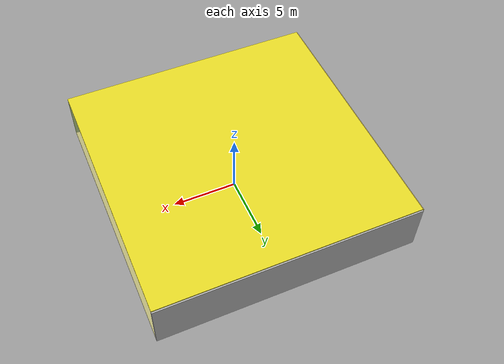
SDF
<sdf version="1.4">
 <world name="default">
  <physics type="ode">
   <max_step_size>0.001</max_step_size>
   <real_time_factor>1</real_time_factor>
   <real_time_update_rate>1000</real_time_update_rate>
   <gravity>0 0 -9.8</gravity>
  </physics>
  <scene><ambient>0.4 0.4 0.4 1</ambient><background>0.7 0.7 0.7 1</background><shadows>1</shadows></scene>
  <model name="Surrounding">
   <static>1</static>
   <link name="Ceiling">
    <collision name="Ceiling_Collision"><geometry><box><size>20 20 0.1</size></box></geometry></collision>
    <visual name="Ceiling_Visual">
     <geometry><box><size>20 20 0.1</size></box></geometry>
     <material>
      <script><uri>file://media/materials/scripts/gazebo.material</uri><name>Gazebo/Yellow</name></script>
     </material>
    </visual>
    <pose>0 0 4.05 0 0 0</pose>
   </link>
   <link name="Wall_South">
    <collision name="Wall_South_Collision">
     <geometry><box><size>20 0 4</size></box></geometry>
     <pose>0 0 2 0 -0 0</pose>
    </collision>
    <visual name="Wall_South_Visual">
     <pose>0 0 2 0 -0 0</pose>
     <geometry><box><size>20 0 4</size></box></geometry>
     <material>
      <script><uri>file://media/materials/scripts/gazebo.material</uri><name>Gazebo/SkyBlue</name></script>
     </material>
    </visual>
    <velocity_decay><linear>0</linear><angular>0</angular></velocity_decay>
    <pose>0 -10 0 0 -0 0</pose>
   </link>
   <link name="Wall_East">
    <collision name="Wall_21_Collision">
     <geometry><box><size>20 0 4</size></box></geometry>
     <pose>0 0 2 0 -0 0</pose>
    </collision>
    <visual name="Wall_21_Visual">
     <pose>0 0 2 0 -0 0</pose>
     <geometry><box><size>20 0 4</size></box></geometry>
     <material>
      <script>
       <uri>file://media/materials/scripts/gazebo.material</uri>
       <name>Gazebo/YellowTransparent</name>
      </script>
     </material>
    </visual>
    <velocity_decay><linear>0</linear><angular>0</angular></velocity_decay>
    <pose>10 0 0 0 -0 1.5708</pose>
   </link>
   <link name="Wall_North">
    <collision name="Wall_22_Collision">
     <geometry><box><size>20 0.2 4</size></box></geometry>
     <pose>0 0 2 0 -0 0</pose>
    </collision>
    <visual name="Wall_22_Visual">
     <pose>0 0 2 0 -0 0</pose>
     <geometry><box><size>20 0.2 4</size></box></geometry>
     <material>
      <script><uri>file://media/materials/scripts/gazebo.material</uri><name>Gazebo/LightOff</name></script>
     </material>
    </visual>
    <velocity_decay><linear>0</linear><angular>0</angular></velocity_decay>
    <pose>0 10 0 0 -0 0</pose>
   </link>
   <link name="Wall_West">
    <collision name="Wall_23_Collision">
     <geometry><box><size>20 0.2 4</size></box></geometry>
     <pose>0 0 2 0 -0 0</pose>
    </collision>
    <visual name="Wall_23_Visual">
     <pose>0 0 2 0 -0 0</pose>
     <geometry><box><size>20 0.2 4</size></box></geometry>
     <material>
      <script><uri>file://media/materials/scripts/gazebo.material</uri><name>Gazebo/ZincYellow</name></script>
     </material>
    </visual>
    <velocity_decay><linear>0</linear><angular>0</angular></velocity_decay>
    <pose>-10 0 0 0 0 -1.5708</pose>
   </link>
   <link name="Ground_link">
    <collision name="collision">
     <pose>0 0 .05 0 -0 0</pose>
     <geometry><box><size>20 20 0.1</size></box></geometry>
    </collision>
    <visual name="visual">
     <pose>0 0 .05 0 -0 0</pose>
     <geometry><box><size>20 20 0.1</size></box></geometry>
     <material>
      <script><uri>file://media/materials/scripts/gazebo.material</uri><name>Gazebo/WhiteGlow</name></script>
     </material>
    </visual>
   </link>
   <static>1</static>
  </model>
  <spherical_coordinates>
   <surface_model>EARTH_WGS84</surface_model>
   <latitude_deg>0</latitude_deg>
   <longitude_deg>0</longitude_deg>
   <elevation>0</elevation>
   <heading_deg>0</heading_deg>
  </spherical_coordinates>
  <light name="lightball_0" type="diffuse">
   <diffuse>0.8 0.8 0.8 1</diffuse>
   <specular>0.2 0.2 0.2 1</specular>
   <attenuation>
    <range>100</range>
    <constant>0.7</constant>
    <linear>0.01</linear>
    <quadratic>0.001</quadratic>
   </attenuation>
   <direction>-0.5 0.1 -0.9</direction>
   <pose>-2.44372212475 6.9658727557 3.80214579251 0 0 0</pose>
  </light>
  <light name="lightball_1" type="diffuse">
   <diffuse>0.8 0.8 0.8 1</diffuse>
   <specular>0.2 0.2 0.2 1</specular>
   <attenuation>
    <range>100</range>
    <constant>0.7</constant>
    <linear>0.01</linear>
    <quadratic>0.001</quadratic>
   </attenuation>
   <direction>-0.5 0.1 -0.9</direction>
   <pose>-3.28464085038 -2.25870257487 1.0595205474 0 0 0</pose>
  </light>
  <light name="lightball_2" type="diffuse">
   <diffuse>0.8 0.8 0.8 1</diffuse>
   <specular>0.2 0.2 0.2 1</specular>
   <attenuation>
    <range>100</range>
    <constant>0.7</constant>
    <linear>0.01</linear>
    <quadratic>0.001</quadratic>
   </attenuation>
   <direction>-0.5 0.1 -0.9</direction>
   <pose>7.26801572349 -8.58488673808 2.61190516821 0 0 0</pose>
  </light>
  <light name="lightball_3" type="diffuse">
   <diffuse>0.8 0.8 0.8 1</diffuse>
   <specular>0.2 0.2 0.2 1</specular>
   <attenuation>
    <range>100</range>
    <constant>0.7</constant>
    <linear>0.01</linear>
    <quadratic>0.001</quadratic>
   </attenuation>
   <direction>-0.5 0.1 -0.9</direction>
   <pose>-4.61509185656 7.23558193679 1.04868783708 0 0 0</pose>
  </light>
  <light name="lightball_4" type="diffuse">
   <diffuse>0.8 0.8 0.8 1</diffuse>
   <specular>0.2 0.2 0.2 1</specular>
   <attenuation>
    <range>100</range>
    <constant>0.7</constant>
    <linear>0.01</linear>
    <quadratic>0.001</quadratic>
   </attenuation>
   <direction>-0.5 0.1 -0.9</direction>
   <pose>3.09168380506 -7.69335989783 2.90502209186 0 0 0</pose>
  </light>
  <include>
   <uri>model://robocup_3Dsim_goal</uri>
   <pose>-0.904337440512 4.61600219298 0 0 0 2.09845254511</pose>
  </include>
 </world>
</sdf>

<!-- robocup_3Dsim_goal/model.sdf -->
<sdf version="1.5">
  <model name="robocup_3d_goal">
    <static>true</static>
    <link name="left_post">
      <pose>0 1.05 0.45 0 0 0</pose>
      <collision name="collision">
        <geometry>
          <cylinder>
            <radius>0.05</radius>
            <length>0.9</length>
          </cylinder>
        </geometry>
      </collision>
      <visual name="visual">
        <geometry>
          <cylinder>
            <radius>0.05</radius>
            <length>0.9</length>
          </cylinder>
        </geometry>
        <material>
          <script>
            <uri>file://media/materials/scripts/gazebo.material</uri>
            <name>Gazebo/ZincYellow</name>
          </script>
        </material>
      </visual>
    </link>
    <link name="left_support_horiz_lower">
      <pose>0.30 1.05 0.01 0 0 0</pose>
      <collision name="collision">
        <geometry>
          <box>
            <size>0.50 0.02 0.02</size>
          </box>
        </geometry>
      </collision>
      <visual name="visual">
        <geometry>
          <box>
            <size>0.50 0.02 0.02</size>
          </box>
        </geometry>
        <material>
          <script>
            <uri>file://media/materials/scripts/gazebo.material</uri>
            <name>Gazebo/White</name>
          </script>
        </material>
      </visual>
    </link>
    <link name="left_support_horiz_upper">
      <pose>0.30 1.05 0.79 0 0 0</pose>
      <collision name="collision">
        <geometry>
          <box>
            <size>0.50 0.02 0.02</size>
          </box>
        </geometry>
      </collision>
      <visual name="visual">
        <geometry>
          <box>
            <size>0.50 0.02 0.02</size>
          </box>
        </geometry>
        <material>
          <script>
            <uri>file://media/materials/scripts/gazebo.material</uri>
            <name>Gazebo/White</name>
          </script>
        </material>
      </visual>
    </link>
    <link name="left_support_vertical">
      <pose>0.56 1.05 0.4 0 1.5708 0</pose>
      <collision name="collision">
        <geometry>
          <box>
            <size>0.80 0.02 0.02</size>
          </box>
        </geometry>
      </collision>
      <visual name="visual">
        <geometry>
          <box>
            <size>0.80 0.02 0.02</size>
          </box>
        </geometry>
        <material>
          <script>
            <uri>file://media/materials/scripts/gazebo.material</uri>
            <name>Gazebo/White</name>
          </script>
        </material>
      </visual>
    </link>
    <link name="right_support_horiz_lower">
      <pose>0.30 -1.05 0.01 0 0 0</pose>
      <collision name="collision">
        <geometry>
          <box>
            <size>0.50 0.02 0.02</size>
          </box>
        </geometry>
      </collision>
      <visual name="visual">
        <geometry>
          <box>
            <size>0.50 0.02 0.02</size>
          </box>
        </geometry>
        <material>
          <script>
            <uri>file://media/materials/scripts/gazebo.material</uri>
            <name>Gazebo/White</name>
          </script>
        </material>
      </visual>
    </link>
    <link name="right_support_horiz_upper">
      <pose>0.30 -1.05 0.79 0 0 0</pose>
      <collision name="collision">
        <geometry>
          <box>
            <size>0.50 0.02 0.02</size>
          </box>
        </geometry>
      </collision>
      <visual name="visual">
        <geometry>
          <box>
            <size>0.50 0.02 0.02</size>
          </box>
        </geometry>
        <material>
          <script>
            <uri>file://media/materials/scripts/gazebo.material</uri>
            <name>Gazebo/White</name>
          </script>
        </material>
      </visual>
    </link>
    <link name="right_support_vertical">
      <pose>0.56 -1.05 0.4 0 1.5708 0</pose>
      <collision name="collision">
        <geometry>
          <box>
            <size>0.80 0.02 0.02</size>
          </box>
        </geometry>
      </collision>
      <visual name="visual">
        <geometry>
          <box>
            <size>0.80 0.02 0.02</size>
          </box>
        </geometry>
        <material>
          <script>
            <uri>file://media/materials/scripts/gazebo.material</uri>
            <name>Gazebo/White</name>
          </script>
        </material>
      </visual>
    </link>
    <link name="center_support_horiz_lower">
      <pose>0.56 0 0.01 0 1.5708 0</pose>
      <collision name="collision">
        <geometry>
          <box>
            <size>0.02 2.08 0.02</size>
          </box>
        </geometry>
      </collision>
      <visual name="visual">
        <geometry>
          <box>
            <size>0.02 2.08 0.02</size>
          </box>
        </geometry>
        <material>
          <script>
            <uri>file://media/materials/scripts/gazebo.material</uri>
            <name>Gazebo/White</name>
          </script>
        </material>
      </visual>
    </link>
    <link name="center_support_horiz_upper">
      <pose>0.56 0 0.79 0 1.5708 0</pose>
      <collision name="collision">
        <geometry>
          <box>
            <size>0.02 2.08 0.02</size>
          </box>
        </geometry>
      </collision>
      <visual name="visual">
        <geometry>
          <box>
            <size>0.02 2.08 0.02</size>
          </box>
        </geometry>
        <material>
          <script>
            <uri>file://media/materials/scripts/gazebo.material</uri>
            <name>Gazebo/White</name>
          </script>
        </material>
      </visual>
    </link>
    <link name="right_post">
      <pose>0 -1.05 0.45 0 0 0</pose>
      <collision name="collision">
        <geometry>
          <cylinder>
            <radius>0.05</radius>
            <length>0.9</length>
          </cylinder>
        </geometry>
      </collision>
      <visual name="visual">
        <geometry>
          <cylinder>
            <radius>0.05</radius>
            <length>0.9</length>
          </cylinder>
        </geometry>
        <material>
          <script>
            <uri>file://media/materials/scripts/gazebo.material</uri>
            <name>Gazebo/ZincYellow</name>
          </script>
        </material>
      </visual>
    </link>
    <link name="crossbar">
      <pose>0 0 0.85 1.57 1.57 0</pose>
      <collision name="collision">
        <geometry>
          <cylinder>
            <radius>0.05</radius>
            <length>2.0</length>
          </cylinder>
        </geometry>
      </collision>
      <visual name="visual">
        <geometry>
          <cylinder>
            <radius>0.05</radius>
            <length>2.0</length>
          </cylinder>
        </geometry>
        <material>
          <script>
            <uri>file://media/materials/scripts/gazebo.material</uri>
            <name>Gazebo/ZincYellow</name>
          </script>
        </material>
      </visual>
    </link>
    <link name="center_net">
      <pose>0.56 0 0.40 0 0 0</pose>
      <collision name="collision">
        <geometry>
          <box>
            <size>0.01 2.1 0.80</size>
          </box>
        </geometry>
      </collision>
      <visual name="visual">
        <geometry>
          <box>
            <size>0.01 2.1 0.80</size>
          </box>
        </geometry>
        <material>
          <script>
            <uri>model://../model_source/models/robocup09_spl_field/materials/scripts/</uri>
            <uri>model://../model_source/models/robocup09_spl_field/materials/textures/</uri>
            <name>RoboCup/Net</name>
          </script>
        </material>
      </visual>
    </link>
    <link name="left_net">
      <pose>0.30 1.05 0.40 0 0 0</pose>
      <collision name="collision">
        <geometry>
          <box>
            <size>0.50 0.01 0.76</size>
          </box>
        </geometry>
      </collision>
      <visual name="visual">
        <geometry>
          <box>
            <size>0.50 0.01 0.76</size>
          </box>
        </geometry>
        <material>
          <script>
            <uri>model://../model_source/models/robocup09_spl_field/materials/scripts/</uri>
            <uri>model://../model_source/models/robocup09_spl_field/materials/textures/</uri>
            <name>RoboCup/Net</name>
          </script>
        </material>
      </visual>
    </link>
    <link name="right_net">
      <pose>0.30 -1.05 0.40 0 0 0</pose>
      <collision name="collision">
        <geometry>
          <box>
            <size>0.50 0.01 0.76</size>
          </box>
        </geometry>
      </collision>
      <visual name="visual">
        <geometry>
          <box>
            <size>0.50 0.01 0.76</size>
          </box>
        </geometry>
        <material>
          <script>
            <uri>model://../model_source/models/robocup09_spl_field/materials/scripts/</uri>
            <uri>model://../model_source/models/robocup09_spl_field/materials/textures/</uri>
            <name>RoboCup/Net</name>
          </script>
        </material>
      </visual>
    </link>
  </model>
</sdf>
